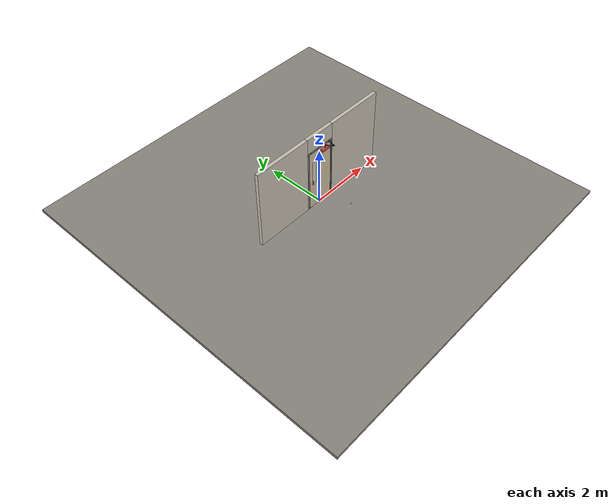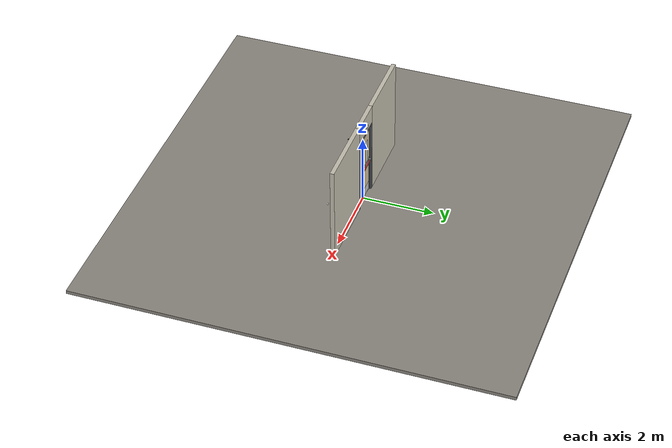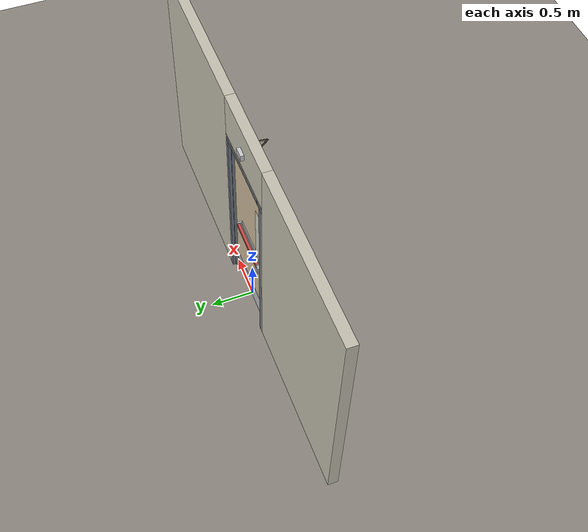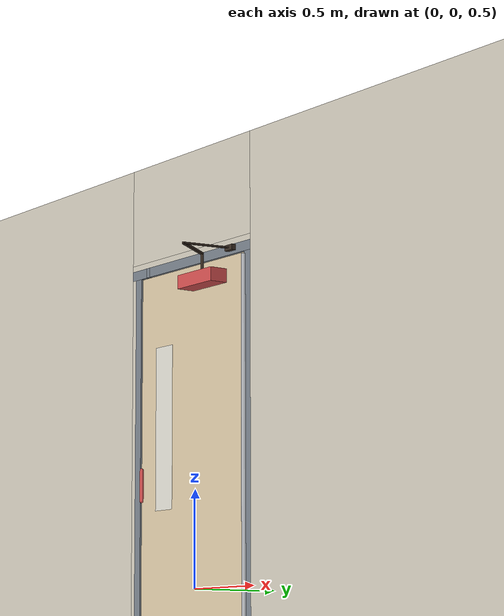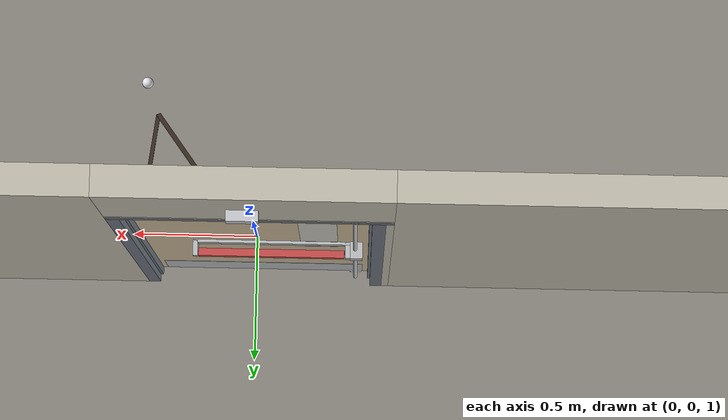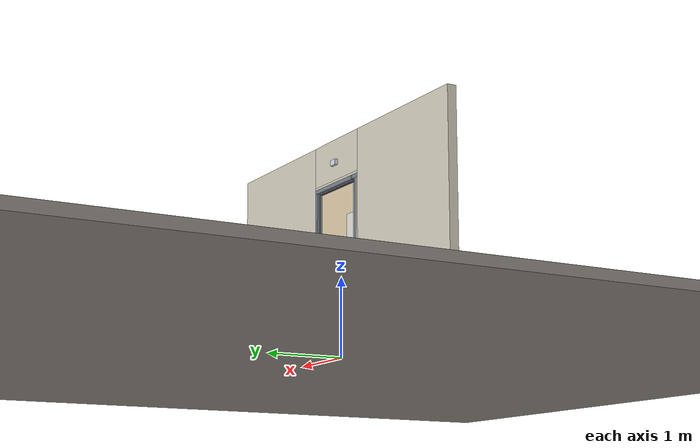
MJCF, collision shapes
<?xml version="1.0" ?>
<mujoco model="db0501_swing_single_full">
  <compiler angle="radian" meshdir="../../hardware" texturedir="../../textures" autolimits="true" inertiafromgeom="false"/>
  <option timestep="0.002" integrator="implicitfast" cone="elliptic" impratio="10" noslip_iterations="3">
    <flag multiccd="enable"/>
  </option>
  <size memory="16M"/>
  <default>
    <geom condim="4" solref="0.005 1" solimp="0.95 0.99 0.001"/>
    <joint solreflimit="0.005 1" solimplimit="0.95 0.99 0.001"/>
    <tendon solreflimit="0.005 1"/>
    <equality solref="0.002 1"/>
  </default>
  <visual>
    <headlight ambient="0.4 0.4 0.4" diffuse="0.7 0.7 0.7" specular="0.2 0.2 0.2"/>
    <quality shadowsize="4096"/>
    <map znear="0.01" zfar="60"/>
  </visual>
  <asset>
    <mesh name="closer_body_fdc4667657" file="closer_body_fdc4667657.obj"/>
    <mesh name="exit_sign_a6449bfa2c" file="exit_sign_a6449bfa2c.obj"/>
    <mesh name="pull_1e5d69a91a" file="pull_1e5d69a91a.obj"/>
    <mesh name="touchbar_pad_2729a067b4" file="touchbar_pad_2729a067b4.obj"/>
    <material name="mat_floor" rgba="0.55 0.53 0.5 1" specular="0.2" shininess="0.15" reflectance="0"/>
    <material name="mat_wall" rgba="0.78 0.76 0.7 1" specular="0.2" shininess="0.1" reflectance="0"/>
    <material name="mat_leaf" rgba="0.82 0.75 0.62 1" specular="0.23" shininess="0.38" reflectance="0.02"/>
    <material name="mat_glass" rgba="0.9 0.93 0.95 0.6" specular="0.2" shininess="0.5" reflectance="0.1"/>
    <material name="mat_hinge" rgba="0.65 0.66 0.68 1" specular="0.74" shininess="0.5" reflectance="0.36"/>
    <material name="mat_op_stainless" rgba="0.75 0.76 0.77 1" specular="0.8" shininess="0.65" reflectance="0.4"/>
    <material name="mat_bolt" rgba="0.75 0.76 0.77 1" specular="0.8" shininess="0.65" reflectance="0.4"/>
    <material name="mat_frame" rgba="0.45 0.48 0.52 1" specular="0.32" shininess="0.6" reflectance="0.08"/>
    <material name="mat_seal" rgba="0.1 0.1 0.1 1" specular="0.2" shininess="0.1" reflectance="0"/>
    <material name="mat_closer" rgba="0.22 0.17 0.13 1" specular="0.8" shininess="0.6" reflectance="0.4"/>
    <material name="mat_kick" rgba="0.75 0.76 0.77 1" specular="0.8" shininess="0.65" reflectance="0.4"/>
    <material name="mat_exit_sign" rgba="0.85 0.1 0.1 1" specular="0.2" shininess="0.6" reflectance="0"/>
    <material name="mat_sign_bracket" rgba="0.8 0.81 0.83 1" specular="0.8" shininess="0.6" reflectance="0.4"/>
    <material name="mat_stop" rgba="0.9 0.9 0.92 1" specular="0.8" shininess="0.9" reflectance="0.4"/>
    <texture name="skybox" type="skybox" builtin="gradient" rgb1="0.6 0.7 0.85" rgb2="0.9 0.92 0.95" width="256" height="256"/>
  </asset>
  <worldbody>
    <light name="sun" pos="1.5 -2.5 4" dir="-0.3 0.5 -0.8" directional="true" diffuse="0.8 0.8 0.8" specular="0.3 0.3 0.3" castshadow="true"/>
    <light name="fill" pos="-1.5 2.5 3" dir="0.3 -0.5 -0.7" directional="true" diffuse="0.35 0.35 0.4" castshadow="false"/>
    <camera name="robot_view" pos="0 -2.609312 1.812087" xyaxes="1 0 0 0 0.26963 0.962964" fovy="52"/>
    <camera name="far_view" pos="0 2.666313 1.812087" xyaxes="-1 0 0 0 -0.26963 0.962964" fovy="52"/>
    <camera name="iso" pos="-2.004737 -2.187262 2.234138" xyaxes="0.741536 -0.670913 0 0.242917 0.268487 0.932151" fovy="46"/>
    <camera name="detail_handle" pos="-0.1865 -0.882 1.32" xyaxes="0.97561 0.219512 0 -0.070934 0.315262 0.94635" fovy="38"/>
    <geom name="floor" type="box" size="6 6 0.05" pos="0 0 -0.05" material="mat_floor" group="0" contype="1" conaffinity="1" friction="0.8 0.005 0.0001" density="2400"/>
    <geom name="wall_left" type="box" size="0.97975 0.0575 1.3735" pos="-1.52025 0.0285 1.3735" material="mat_wall" group="0" contype="1" conaffinity="1" friction="0.6 0.005 0.0001" density="800"/>
    <geom name="wall_right" type="box" size="0.99475 0.0575 1.3735" pos="1.50525 0.0285 1.3735" material="mat_wall" group="0" contype="1" conaffinity="1" friction="0.6 0.005 0.0001" density="800"/>
    <geom name="wall_header" type="box" size="0.5255 0.0575 0.26" pos="-0.015 0.0285 2.487" material="mat_wall" group="0" contype="1" conaffinity="1" friction="0.6 0.005 0.0001" density="800"/>
    <geom name="leaf_bottom_strike_plate" type="box" size="0.0255 0.0255 0.00075" pos="-0.3965 0 0.00075" material="mat_bolt" group="0" contype="1" conaffinity="1" friction="0.6 0.005 0.0001" density="7850"/>
    <geom name="leaf_bottom_strike_p" type="box" size="0.0215 0.004 0.00575" pos="-0.3965 0.0145 0.00725" material="mat_bolt" group="0" contype="1" conaffinity="1" friction="0.6 0.005 0.0001" density="7850"/>
    <geom name="leaf_bottom_strike_n" type="box" size="0.0215 0.004 0.00575" pos="-0.3965 -0.0145 0.00725" material="mat_bolt" group="0" contype="1" conaffinity="1" friction="0.6 0.005 0.0001" density="7850"/>
    <geom name="leaf_bottom_strike_e" type="box" size="0.004 0.0215 0.00575" pos="-0.411 0 0.00725" material="mat_bolt" group="0" contype="1" conaffinity="1" friction="0.6 0.005 0.0001" density="7850"/>
    <geom name="jamb_hinge" type="box" size="0.025 0.0575 1.0735" pos="0.4855 0.0285 1.0735" material="mat_frame" group="0" contype="1" conaffinity="1" friction="0.6 0.005 0.0001" density="300"/>
    <geom name="jamb_strike" type="box" size="0.025 0.0575 1.0735" pos="-0.4855 0.0285 1.0735" material="mat_frame" group="0" contype="1" conaffinity="1" friction="0.6 0.005 0.0001" density="300"/>
    <geom name="stud_strike" type="box" size="0.015 0.0575 1.0735" pos="-0.5255 0.0285 1.0735" material="mat_wall" group="0" contype="1" conaffinity="1" friction="0.6 0.005 0.0001" density="500"/>
    <geom name="jamb_head_pwall_-396_n" type="box" size="0.0135 0.009 0.025" pos="-0.3965 -0.02 2.172" material="mat_frame" group="0" contype="1" conaffinity="1" friction="0.6 0.005 0.0001" density="300"/>
    <geom name="jamb_head_pwall_-396_p" type="box" size="0.0135 0.0375 0.025" pos="-0.3965 0.0485 2.172" material="mat_frame" group="0" contype="1" conaffinity="1" friction="0.6 0.005 0.0001" density="300"/>
    <geom name="jamb_head_pback_-396" type="box" size="0.0135 0.011 0.0135" pos="-0.3965 0 2.1835" material="mat_frame" group="0" contype="1" conaffinity="1" friction="0.6 0.005 0.0001" density="300"/>
    <geom name="jamb_head_0" type="box" size="0.06525 0.0575 0.025" pos="-0.47525 0.0285 2.172" material="mat_frame" group="0" contype="1" conaffinity="1" friction="0.6 0.005 0.0001" density="300"/>
    <geom name="jamb_head_1" type="box" size="0.44675 0.0575 0.025" pos="0.06375 0.0285 2.172" material="mat_frame" group="0" contype="1" conaffinity="1" friction="0.6 0.005 0.0001" density="300"/>
    <geom name="head_stud" type="box" size="0.5255 0.0575 0.015" pos="-0.015 0.0285 2.212" material="mat_wall" group="0" contype="1" conaffinity="1" friction="0.6 0.005 0.0001" density="500"/>
    <geom name="stop_hinge" type="box" size="0.0055 0.016 1.0735" pos="0.455 0.0385 1.0735" material="mat_frame" group="0" contype="1" conaffinity="1" friction="0.6 0.005 0.0001" density="300"/>
    <geom name="stop_strike" type="box" size="0.0055 0.016 1.0735" pos="-0.455 0.0385 1.0735" material="mat_frame" group="0" contype="1" conaffinity="1" friction="0.6 0.005 0.0001" density="300"/>
    <geom name="stop_head" type="box" size="0.4605 0.016 0.0055" pos="0 0.0385 2.1415" material="mat_frame" group="0" contype="1" conaffinity="1" friction="0.6 0.005 0.0001" density="300"/>
    <geom name="seal_hinge" type="box" size="0.004 0.004 1.0735" pos="0.4575 0.026 1.0735" material="mat_seal" group="1" contype="0" conaffinity="0" density="1100"/>
    <geom name="seal_strike" type="box" size="0.004 0.004 1.0735" pos="-0.4575 0.026 1.0735" material="mat_seal" group="1" contype="0" conaffinity="0" density="1100"/>
    <geom name="seal_head" type="box" size="0.4405 0.004 0.008" pos="0 0.026 2.135" material="mat_seal" group="1" contype="0" conaffinity="0" density="1100"/>
    <geom name="closer_bracket" type="box" size="0.03 0.012 0.014" pos="0.3605 -0.041 2.177" material="mat_closer" group="1" contype="0" conaffinity="0" density="2700"/>
    <geom name="exit_sign" type="mesh" mesh="exit_sign_a6449bfa2c" pos="0 0.15 2.447" material="mat_exit_sign" group="2" contype="0" conaffinity="0" density="500"/>
    <geom name="exit_sign_bracket" type="box" size="0.05775 0.02 0.035" pos="0 0.1055 2.447" material="mat_sign_bracket" group="2" contype="0" conaffinity="0" density="7850"/>
    <geom name="floor_stop_dome" type="sphere" size="0.025" pos="0.545135 -0.801201 0" material="mat_stop" group="0" contype="1" conaffinity="1" friction="0.6 0.005 0.0001" density="7000"/>
    <site name="approach_point" pos="0 -1.5 0" quat="1 0 0 0" size="0.05" rgba="0.2 0.9 0.2 0.5" group="4"/>
    <site name="goal_point" pos="0 1.5 0" quat="1 0 0 0" size="0.05" rgba="0.2 0.9 0.2 0.5" group="4"/>
    <site name="door_plane_center" pos="0 0 1.0735" quat="1 0 0 0" size="0.02" rgba="0.2 0.9 0.2 0.5" group="4"/>
    <body name="leaf" pos="0.4605 0 0">
      <inertial pos="-0.431312 -0.012128 1.242322" mass="60.432212" quat="0.513583 -0.520277 -0.46524 -0.499095" diaginertia="4.312632097 28.553449318 32.74710591"/>
      <joint name="leaf_hinge" type="hinge" axis="0 0 1" pos="-0.003 -0.029 0" limited="true" range="0 1.658063" solreflimit="0.02 1" damping="12.268966" frictionloss="3.079298" stiffness="14.183889" springref="-2.144687" armature="0.02"/>
      <geom name="leaf_slab" type="box" size="0.457 0.022 1.0635" pos="-0.46 0 1.0795" material="mat_leaf" group="0" contype="1" conaffinity="1" friction="0.42 0.005 0.0001" density="1"/>
      <geom name="leaf_glass_0" type="box" size="0.075 0.0228 0.4254" pos="-0.71146 0 1.33474" material="mat_glass" group="1" contype="0" conaffinity="0" density="1"/>
      <geom name="hinge_continuous" type="cylinder" size="0.0136 1.0535" pos="-0.003 -0.029 1.0795" material="mat_hinge" group="1" contype="0" conaffinity="0" density="2700"/>
      <geom name="leaf_exit_device_rail" type="box" size="0.31705 0.006 0.025" pos="-0.51995 0.028 1.04" material="mat_op_stainless" group="0" contype="1" conaffinity="1" friction="0.6 0.005 0.0001" density="3000"/>
      <geom name="leaf_exit_device_rail_end_n" type="box" size="0.01 0.0325 0.025" pos="-0.827 0.0545 1.04" material="mat_op_stainless" group="0" contype="1" conaffinity="1" friction="0.6 0.005 0.0001" density="3000"/>
      <geom name="leaf_exit_device_rail_end_p" type="box" size="0.01 0.0325 0.025" pos="-0.2129 0.0545 1.04" material="mat_op_stainless" group="0" contype="1" conaffinity="1" friction="0.6 0.005 0.0001" density="3000"/>
      <geom name="leaf_exit_device_case" type="box" size="0.025 0.034125 0.0375" pos="-0.862 0.056125 1.04" material="mat_op_stainless" group="0" contype="1" conaffinity="1" friction="0.6 0.005 0.0001" density="3000"/>
      <geom name="leaf_exit_device_rod_top" type="cylinder" size="0.008 0.51775" pos="-0.857 0.052 1.59525" material="mat_op_stainless" group="1" contype="0" conaffinity="0" density="7850"/>
      <geom name="leaf_exit_device_rod_bot" type="cylinder" size="0.008 0.47825" pos="-0.857 0.052 0.52425" material="mat_op_stainless" group="1" contype="0" conaffinity="0" density="7850"/>
      <geom name="leaf_far_pull_n" type="mesh" mesh="pull_1e5d69a91a" pos="-0.827 -0.022 1.04" quat="0 0 -0.707107 0.707107" material="mat_op_stainless" group="1" contype="0" conaffinity="0" density="3000"/>
      <geom name="leaf_far_pull_col_n" type="capsule" size="0.0095 0.08" pos="-0.827 -0.082 1.04" material="mat_op_stainless" group="3" contype="1" conaffinity="1" rgba="0.8 0.3 0.3 0.25" friction="0.7 0.01 0.0001" density="3000"/>
      <geom name="closer_body" type="mesh" mesh="closer_body_fdc4667657" pos="-0.3 -0.022 2.047" quat="0 0 -0.707107 0.707107" material="mat_closer" group="1" contype="0" conaffinity="0" density="2000"/>
      <geom name="closer_body_col" type="box" size="0.145 0.05 0.035" pos="-0.3 -0.072 2.047" material="mat_closer" group="3" contype="1" conaffinity="1" rgba="0.8 0.3 0.3 0.25" friction="0.6 0.005 0.0001" density="2000"/>
      <geom name="closer_pinion_shaft" type="cylinder" size="0.008 0.065" pos="-0.3 -0.072 2.112" material="mat_closer" group="1" contype="0" conaffinity="0" density="2700"/>
      <geom name="kick_plate_p" type="box" size="0.427 0.0008 0.125" pos="-0.46 0.0228 0.151" material="mat_kick" group="2" contype="0" conaffinity="0" density="7900"/>
      <site name="leaf_far_pull_grip_n" pos="-0.827 -0.082 1.04" quat="1 0 0 0" size="0.012" rgba="0.2 0.9 0.2 0.5" group="4"/>
      <site name="leaf_edge_mid" pos="-0.917 0 1.0635" quat="1 0 0 0" size="0.02" rgba="0.2 0.9 0.2 0.5" group="4"/>
      <body name="leaf_exit_device" pos="-0.51995 0.022 1.04">
        <inertial pos="0 0.05 0" mass="4.76361" quat="0 0 0.707107 0.707107" diaginertia="0.00116113 0.137653089 0.138099678"/>
        <joint name="leaf_exit_device_slide" type="slide" axis="0 -1 0" limited="true" range="0 0.016" damping="165.880125" frictionloss="0.5" stiffness="1400" springref="-0.015714" armature="0.15"/>
        <geom name="leaf_exit_device_pad" type="mesh" mesh="touchbar_pad_2729a067b4" pos="0 0 0" quat="0 0 0.707107 0.707107" material="mat_op_stainless" group="1" contype="0" conaffinity="0" density="3000"/>
        <geom name="leaf_exit_device_pad_col" type="box" size="0.29405 0.015 0.0225" pos="0 0.05 0" material="mat_op_stainless" group="3" contype="1" conaffinity="1" rgba="0.8 0.3 0.3 0.25" friction="0.8 0.01 0.0001" density="3000"/>
        <site name="leaf_exit_device_push" pos="0 0.065 0" quat="1 0 0 0" size="0.015" rgba="0.2 0.9 0.2 0.5" group="4"/>
      </body>
      <body name="leaf_top_latch" pos="-0.857 0 2.143">
        <inertial pos="0 0 -0.0155" mass="0.151026" quat="0.707107 0 0.707107 0" diaginertia="0.00000654 0.000053442 0.000053442"/>
        <joint name="leaf_top_latch_slide" type="slide" axis="0 0 -1" limited="true" range="0 0.019" damping="2" frictionloss="0.3" stiffness="800" springref="-0.01" armature="0.1"/>
        <geom name="leaf_top_latch_capsule" type="capsule" size="0.0095 0.025" pos="0 0 -0.0155" material="mat_bolt" group="0" contype="1" conaffinity="1" friction="0.2 0.005 0.0001" density="8500"/>
      </body>
      <body name="leaf_bottom_latch" pos="-0.857 0 0.03">
        <inertial pos="0 0 0.012" mass="0.167896" quat="0.707107 0 0.707107 0" diaginertia="0.000007301 0.000072388 0.000072388"/>
        <joint name="leaf_bottom_latch_slide" type="slide" axis="0 0 1" limited="true" range="0 0.026" damping="2" frictionloss="0.3" stiffness="800" springref="-0.01" armature="0.1"/>
        <geom name="leaf_bottom_latch_capsule" type="capsule" size="0.0095 0.0285" pos="0 0 0.012" material="mat_bolt" group="0" contype="1" conaffinity="1" friction="0.2 0.005 0.0001" density="8500"/>
      </body>
      <body name="closer_arm_main" pos="-0.3 -0.072 2.177" quat="0.890947 0 0 -0.454107">
        <inertial pos="0.14 0 0" mass="0.12096" quat="1 0 0 0" diaginertia="0.000003588 0.00079128 0.000792852"/>
        <joint name="closer_pinion" type="hinge" axis="0 0 1" limited="false" damping="0.01" armature="0.002"/>
        <geom name="closer_arm_main_geom" type="box" size="0.14 0.008 0.005" pos="0.14 0 0" material="mat_closer" group="1" contype="0" conaffinity="0" density="2700"/>
        <body name="closer_arm_fore" pos="0.28 0 0" quat="0.373215 0 0 0.927745">
          <inertial pos="0.128088 0 0" mass="0.076531" quat="1 0 0 0" diaginertia="0.000001771 0.000437665 0.000438201"/>
          <joint name="closer_elbow" type="hinge" axis="0 0 1" limited="false" damping="0.01" armature="0.002"/>
          <geom name="closer_arm_fore_geom" type="box" size="0.1125 0.007 0.004" pos="0.1125 0 0" material="mat_closer" group="1" contype="0" conaffinity="0" density="2700"/>
          <geom name="closer_fore_neck" type="box" size="0.0175 0.003 0.003" pos="0.2425 0 0" material="mat_closer" group="1" contype="0" conaffinity="0" density="2700"/>
          <geom name="closer_fore_pivot" type="cylinder" size="0.005 0.012" pos="0.26 0 0" material="mat_closer" group="1" contype="0" conaffinity="0" density="2700"/>
        </body>
      </body>
    </body>
  </worldbody>
  <tendon>
    <fixed name="leaf_top_latch_coupling" limited="true" range="0 10">
      <joint joint="leaf_top_latch_slide" coef="1"/>
      <joint joint="leaf_exit_device_slide" coef="-1.142857"/>
    </fixed>
    <fixed name="leaf_bottom_latch_coupling" limited="true" range="0 10">
      <joint joint="leaf_bottom_latch_slide" coef="1"/>
      <joint joint="leaf_exit_device_slide" coef="-1.56391"/>
    </fixed>
  </tendon>
  <equality>
    <connect name="closer_arm_connect" body1="closer_arm_fore" body2="world" anchor="0.26 0 0" active="true"/>
  </equality>
  <contact>
    <exclude body1="closer_arm_main" body2="leaf"/>
    <exclude body1="closer_arm_fore" body2="leaf"/>
    <exclude body1="closer_arm_main" body2="closer_arm_fore"/>
  </contact>
  <sensor>
    <jointpos name="leaf_hinge_pos" joint="leaf_hinge"/>
    <jointvel name="leaf_hinge_vel" joint="leaf_hinge"/>
    <jointpos name="leaf_exit_device_slide_pos" joint="leaf_exit_device_slide"/>
    <jointvel name="leaf_exit_device_slide_vel" joint="leaf_exit_device_slide"/>
    <jointpos name="leaf_top_latch_slide_pos" joint="leaf_top_latch_slide"/>
    <jointvel name="leaf_top_latch_slide_vel" joint="leaf_top_latch_slide"/>
    <jointpos name="leaf_bottom_latch_slide_pos" joint="leaf_bottom_latch_slide"/>
    <jointvel name="leaf_bottom_latch_slide_vel" joint="leaf_bottom_latch_slide"/>
  </sensor>
</mujoco>
